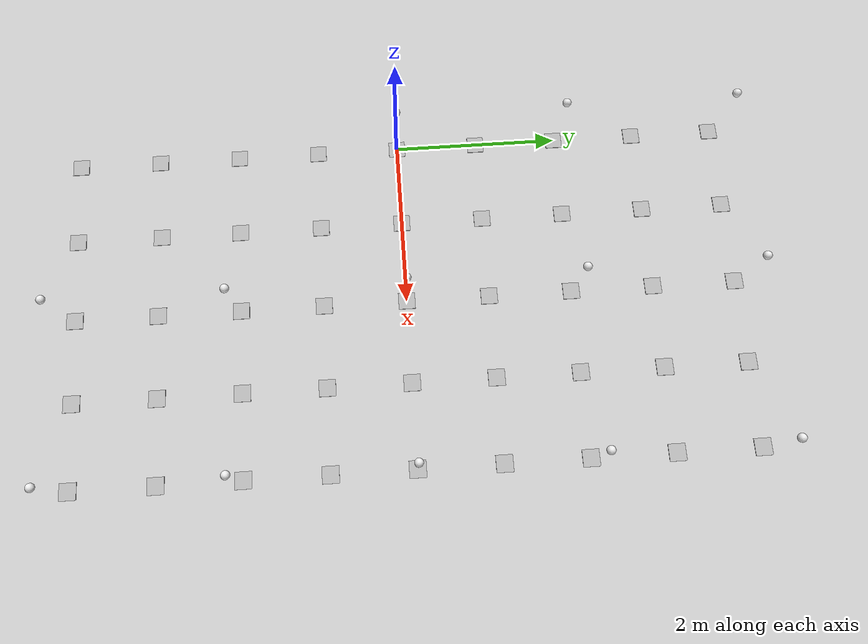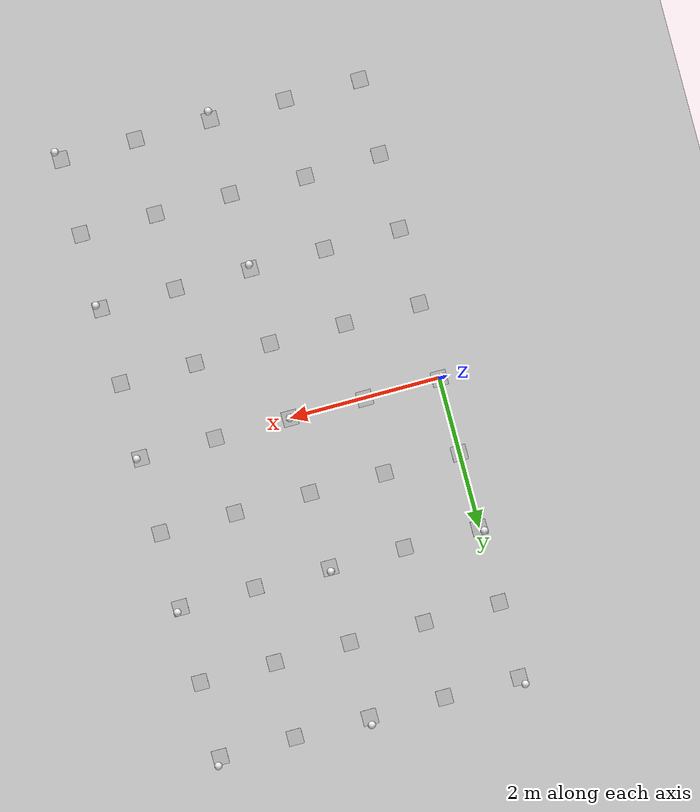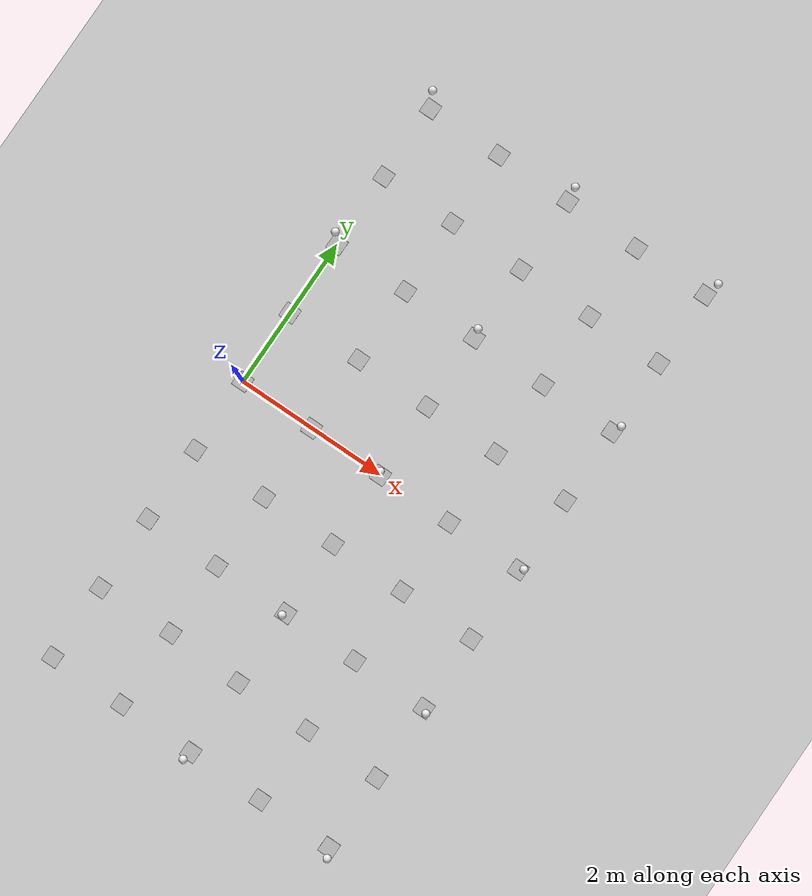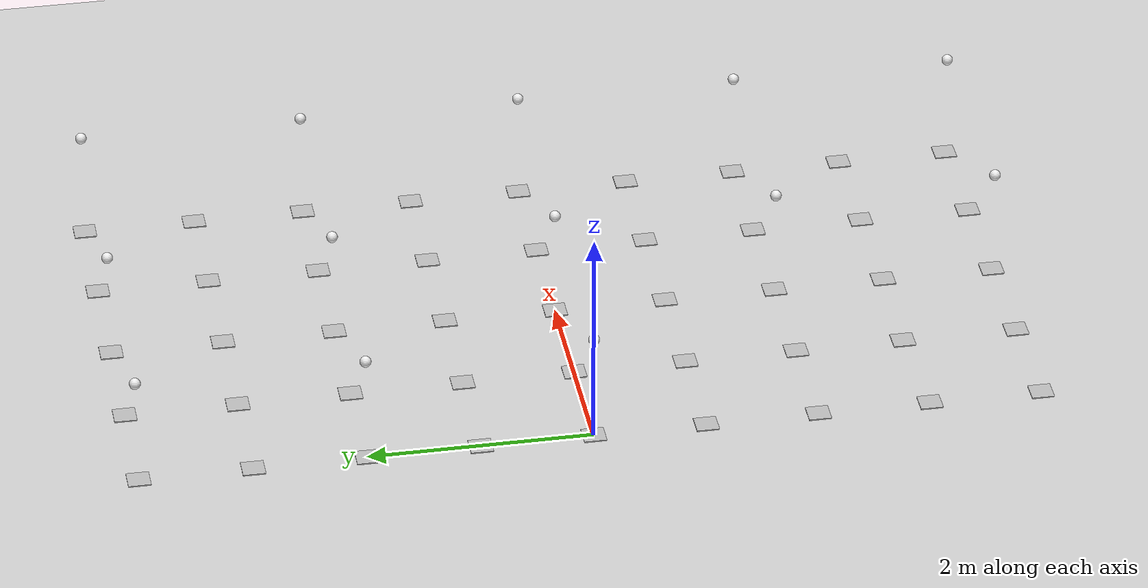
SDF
<sdf version="1.7">
 <world name="default">
  <model name="ground_plane">
   <static>1</static>
   <link name="link">
    <collision name="collision">
     <geometry><plane><normal>0 0 1</normal><size>100 100</size></plane></geometry>
     <surface>
      <contact><collide_bitmask>65535</collide_bitmask></contact>
      <friction><ode><mu>100</mu><mu2>50</mu2></ode></friction>
     </surface>
    </collision>
    <visual name="visual">
     <cast_shadows>0</cast_shadows>
     <geometry><plane><normal>0 0 1</normal><size>100 100</size></plane></geometry>
     <material>
      <script><uri>file://media/materials/scripts/gazebo.material</uri><name>Gazebo/Grey</name></script>
     </material>
    </visual>
   </link>
  </model>
  <model name="Ceiling_Light_12">
   <pose>0 0 1 0 0 0</pose>
   <link name="bulb">
    <visual name="main">
     <geometry><sphere><radius>0.05</radius></sphere></geometry>
     <material>
      <script><uri>file://media/materials/scripts/gazebo.material</uri><name>Gazebo/WhiteGlow</name></script>
      <shininess>0.3</shininess>
     </material>
    </visual>
    <light name="source" type="spot">
     <diffuse>1 1 0.6 1</diffuse>
     <specular>.1 .1 .1 1</specular>
     <spot>
      <inner_angle>1.5707963267948966</inner_angle>
      <outer_angle>2.356194490192345</outer_angle>
      <falloff>0.5</falloff>
     </spot>
     <attenuation>
      <range>3</range>
      <linear>0.6</linear>
      <constant>0.8</constant>
      <quadratic>0.2</quadratic>
     </attenuation>
     <cast_shadows>0</cast_shadows>
    </light>
   </link>
   <static>1</static>
  </model>
  <model name="Ceiling_Light_13">
   <pose>0 2 1 0 0 0</pose>
   <link name="bulb">
    <visual name="main">
     <geometry><sphere><radius>0.05</radius></sphere></geometry>
     <material>
      <script><uri>file://media/materials/scripts/gazebo.material</uri><name>Gazebo/WhiteGlow</name></script>
      <shininess>0.3</shininess>
     </material>
    </visual>
    <light name="source" type="spot">
     <diffuse>1 1 0.6 1</diffuse>
     <specular>.1 .1 .1 1</specular>
     <spot>
      <inner_angle>1.5707963267948966</inner_angle>
      <outer_angle>2.356194490192345</outer_angle>
      <falloff>0.5</falloff>
     </spot>
     <attenuation>
      <range>3</range>
      <linear>0.6</linear>
      <constant>0.8</constant>
      <quadratic>0.2</quadratic>
     </attenuation>
     <cast_shadows>0</cast_shadows>
    </light>
   </link>
   <static>1</static>
  </model>
  <model name="Ceiling_Light_14">
   <pose>0 4 1 0 0 0</pose>
   <link name="bulb">
    <visual name="main">
     <geometry><sphere><radius>0.05</radius></sphere></geometry>
     <material>
      <script><uri>file://media/materials/scripts/gazebo.material</uri><name>Gazebo/WhiteGlow</name></script>
      <shininess>0.3</shininess>
     </material>
    </visual>
    <light name="source" type="spot">
     <diffuse>1 1 0.6 1</diffuse>
     <specular>.1 .1 .1 1</specular>
     <spot>
      <inner_angle>1.5707963267948966</inner_angle>
      <outer_angle>2.356194490192345</outer_angle>
      <falloff>0.5</falloff>
     </spot>
     <attenuation>
      <range>3</range>
      <linear>0.6</linear>
      <constant>0.8</constant>
      <quadratic>0.2</quadratic>
     </attenuation>
     <cast_shadows>0</cast_shadows>
    </light>
   </link>
   <static>1</static>
  </model>
  <model name="Ceiling_Light_15">
   <pose>2 -4 1 0 0 0</pose>
   <link name="bulb">
    <visual name="main">
     <geometry><sphere><radius>0.05</radius></sphere></geometry>
     <material>
      <script><uri>file://media/materials/scripts/gazebo.material</uri><name>Gazebo/WhiteGlow</name></script>
      <shininess>0.3</shininess>
     </material>
    </visual>
    <light name="source" type="spot">
     <diffuse>1 1 0.6 1</diffuse>
     <specular>.1 .1 .1 1</specular>
     <spot>
      <inner_angle>1.5707963267948966</inner_angle>
      <outer_angle>2.356194490192345</outer_angle>
      <falloff>0.5</falloff>
     </spot>
     <attenuation>
      <range>3</range>
      <linear>0.6</linear>
      <constant>0.8</constant>
      <quadratic>0.2</quadratic>
     </attenuation>
     <cast_shadows>0</cast_shadows>
    </light>
   </link>
   <static>1</static>
  </model>
  <model name="Ceiling_Light_16">
   <pose>2 -2 1 0 0 0</pose>
   <link name="bulb">
    <visual name="main">
     <geometry><sphere><radius>0.05</radius></sphere></geometry>
     <material>
      <script><uri>file://media/materials/scripts/gazebo.material</uri><name>Gazebo/WhiteGlow</name></script>
      <shininess>0.3</shininess>
     </material>
    </visual>
    <light name="source" type="spot">
     <diffuse>1 1 0.6 1</diffuse>
     <specular>.1 .1 .1 1</specular>
     <spot>
      <inner_angle>1.5707963267948966</inner_angle>
      <outer_angle>2.356194490192345</outer_angle>
      <falloff>0.5</falloff>
     </spot>
     <attenuation>
      <range>3</range>
      <linear>0.6</linear>
      <constant>0.8</constant>
      <quadratic>0.2</quadratic>
     </attenuation>
     <cast_shadows>0</cast_shadows>
    </light>
   </link>
   <static>1</static>
  </model>
  <model name="Ceiling_Light_17">
   <pose>2 0 1 0 0 0</pose>
   <link name="bulb">
    <visual name="main">
     <geometry><sphere><radius>0.05</radius></sphere></geometry>
     <material>
      <script><uri>file://media/materials/scripts/gazebo.material</uri><name>Gazebo/WhiteGlow</name></script>
      <shininess>0.3</shininess>
     </material>
    </visual>
    <light name="source" type="spot">
     <diffuse>1 1 0.6 1</diffuse>
     <specular>.1 .1 .1 1</specular>
     <spot>
      <inner_angle>1.5707963267948966</inner_angle>
      <outer_angle>2.356194490192345</outer_angle>
      <falloff>0.5</falloff>
     </spot>
     <attenuation>
      <range>3</range>
      <linear>0.6</linear>
      <constant>0.8</constant>
      <quadratic>0.2</quadratic>
     </attenuation>
     <cast_shadows>0</cast_shadows>
    </light>
   </link>
   <static>1</static>
  </model>
  <model name="Ceiling_Light_18">
   <pose>2 2 1 0 0 0</pose>
   <link name="bulb">
    <visual name="main">
     <geometry><sphere><radius>0.05</radius></sphere></geometry>
     <material>
      <script><uri>file://media/materials/scripts/gazebo.material</uri><name>Gazebo/WhiteGlow</name></script>
      <shininess>0.3</shininess>
     </material>
    </visual>
    <light name="source" type="spot">
     <diffuse>1 1 0.6 1</diffuse>
     <specular>.1 .1 .1 1</specular>
     <spot>
      <inner_angle>1.5707963267948966</inner_angle>
      <outer_angle>2.356194490192345</outer_angle>
      <falloff>0.5</falloff>
     </spot>
     <attenuation>
      <range>3</range>
      <linear>0.6</linear>
      <constant>0.8</constant>
      <quadratic>0.2</quadratic>
     </attenuation>
     <cast_shadows>0</cast_shadows>
    </light>
   </link>
   <static>1</static>
  </model>
  <model name="Ceiling_Light_19">
   <pose>2 4 1 0 0 0</pose>
   <link name="bulb">
    <visual name="main">
     <geometry><sphere><radius>0.05</radius></sphere></geometry>
     <material>
      <script><uri>file://media/materials/scripts/gazebo.material</uri><name>Gazebo/WhiteGlow</name></script>
      <shininess>0.3</shininess>
     </material>
    </visual>
    <light name="source" type="spot">
     <diffuse>1 1 0.6 1</diffuse>
     <specular>.1 .1 .1 1</specular>
     <spot>
      <inner_angle>1.5707963267948966</inner_angle>
      <outer_angle>2.356194490192345</outer_angle>
      <falloff>0.5</falloff>
     </spot>
     <attenuation>
      <range>3</range>
      <linear>0.6</linear>
      <constant>0.8</constant>
      <quadratic>0.2</quadratic>
     </attenuation>
     <cast_shadows>0</cast_shadows>
    </light>
   </link>
   <static>1</static>
  </model>
  <model name="Ceiling_Light_20">
   <pose>4 -4 1 0 0 0</pose>
   <link name="bulb">
    <visual name="main">
     <geometry><sphere><radius>0.05</radius></sphere></geometry>
     <material>
      <script><uri>file://media/materials/scripts/gazebo.material</uri><name>Gazebo/WhiteGlow</name></script>
      <shininess>0.3</shininess>
     </material>
    </visual>
    <light name="source" type="spot">
     <diffuse>1 1 0.6 1</diffuse>
     <specular>.1 .1 .1 1</specular>
     <spot>
      <inner_angle>1.5707963267948966</inner_angle>
      <outer_angle>2.356194490192345</outer_angle>
      <falloff>0.5</falloff>
     </spot>
     <attenuation>
      <range>3</range>
      <linear>0.6</linear>
      <constant>0.8</constant>
      <quadratic>0.2</quadratic>
     </attenuation>
     <cast_shadows>0</cast_shadows>
    </light>
   </link>
   <static>1</static>
  </model>
  <model name="Ceiling_Light_21">
   <pose>4 -2 1 0 0 0</pose>
   <link name="bulb">
    <visual name="main">
     <geometry><sphere><radius>0.05</radius></sphere></geometry>
     <material>
      <script><uri>file://media/materials/scripts/gazebo.material</uri><name>Gazebo/WhiteGlow</name></script>
      <shininess>0.3</shininess>
     </material>
    </visual>
    <light name="source" type="spot">
     <diffuse>1 1 0.6 1</diffuse>
     <specular>.1 .1 .1 1</specular>
     <spot>
      <inner_angle>1.5707963267948966</inner_angle>
      <outer_angle>2.356194490192345</outer_angle>
      <falloff>0.5</falloff>
     </spot>
     <attenuation>
      <range>3</range>
      <linear>0.6</linear>
      <constant>0.8</constant>
      <quadratic>0.2</quadratic>
     </attenuation>
     <cast_shadows>0</cast_shadows>
    </light>
   </link>
   <static>1</static>
  </model>
  <model name="Ceiling_Light_22">
   <pose>4 0 1 0 0 0</pose>
   <link name="bulb">
    <visual name="main">
     <geometry><sphere><radius>0.05</radius></sphere></geometry>
     <material>
      <script><uri>file://media/materials/scripts/gazebo.material</uri><name>Gazebo/WhiteGlow</name></script>
      <shininess>0.3</shininess>
     </material>
    </visual>
    <light name="source" type="spot">
     <diffuse>1 1 0.6 1</diffuse>
     <specular>.1 .1 .1 1</specular>
     <spot>
      <inner_angle>1.5707963267948966</inner_angle>
      <outer_angle>2.356194490192345</outer_angle>
      <falloff>0.5</falloff>
     </spot>
     <attenuation>
      <range>3</range>
      <linear>0.6</linear>
      <constant>0.8</constant>
      <quadratic>0.2</quadratic>
     </attenuation>
     <cast_shadows>0</cast_shadows>
    </light>
   </link>
   <static>1</static>
  </model>
  <model name="Ceiling_Light_23">
   <pose>4 2 1 0 0 0</pose>
   <link name="bulb">
    <visual name="main">
     <geometry><sphere><radius>0.05</radius></sphere></geometry>
     <material>
      <script><uri>file://media/materials/scripts/gazebo.material</uri><name>Gazebo/WhiteGlow</name></script>
      <shininess>0.3</shininess>
     </material>
    </visual>
    <light name="source" type="spot">
     <diffuse>1 1 0.6 1</diffuse>
     <specular>.1 .1 .1 1</specular>
     <spot>
      <inner_angle>1.5707963267948966</inner_angle>
      <outer_angle>2.356194490192345</outer_angle>
      <falloff>0.5</falloff>
     </spot>
     <attenuation>
      <range>3</range>
      <linear>0.6</linear>
      <constant>0.8</constant>
      <quadratic>0.2</quadratic>
     </attenuation>
     <cast_shadows>0</cast_shadows>
    </light>
   </link>
   <static>1</static>
  </model>
  <model name="Ceiling_Light_24">
   <pose>4 4 1 0 0 0</pose>
   <link name="bulb">
    <visual name="main">
     <geometry><sphere><radius>0.05</radius></sphere></geometry>
     <material>
      <script><uri>file://media/materials/scripts/gazebo.material</uri><name>Gazebo/WhiteGlow</name></script>
      <shininess>0.3</shininess>
     </material>
    </visual>
    <light name="source" type="spot">
     <diffuse>1 1 0.6 1</diffuse>
     <specular>.1 .1 .1 1</specular>
     <spot>
      <inner_angle>1.5707963267948966</inner_angle>
      <outer_angle>2.356194490192345</outer_angle>
      <falloff>0.5</falloff>
     </spot>
     <attenuation>
      <range>3</range>
      <linear>0.6</linear>
      <constant>0.8</constant>
      <quadratic>0.2</quadratic>
     </attenuation>
     <cast_shadows>0</cast_shadows>
    </light>
   </link>
   <static>1</static>
  </model>
  <model name="Apriltag36_11_00001">
   <link name="main">
    <visual name="main_Visual">
     <geometry><box><size>0.2 0.2 0.01</size></box></geometry>
     <material>
      <script>
       <uri>model://Apriltag36_11_00001/materials/scripts</uri>
       <uri>model://Apriltag36_11_00001/materials/textures</uri>
       <name>Apriltag36_11_00001</name>
      </script>
     </material>
    </visual>
   </link>
   <static>1</static>
   <pose>1 0 0 0 -0 0</pose>
  </model>
  <model name="Apriltag36_11_00002">
   <link name="main">
    <visual name="main_Visual">
     <geometry><box><size>0.2 0.2 0.01</size></box></geometry>
     <material>
      <script>
       <uri>model://Apriltag36_11_00002/materials/scripts</uri>
       <uri>model://Apriltag36_11_00002/materials/textures</uri>
       <name>Apriltag36_11_00002</name>
      </script>
     </material>
    </visual>
   </link>
   <static>1</static>
   <pose>0 -1 0 0 -0 0</pose>
  </model>
  <model name="Apriltag36_11_00003">
   <link name="main">
    <visual name="main_Visual">
     <geometry><box><size>0.2 0.2 0.01</size></box></geometry>
     <material>
      <script>
       <uri>model://Apriltag36_11_00003/materials/scripts</uri>
       <uri>model://Apriltag36_11_00003/materials/textures</uri>
       <name>Apriltag36_11_00003</name>
      </script>
     </material>
    </visual>
   </link>
   <static>1</static>
   <pose>1 -1 0 0 -0 0</pose>
  </model>
  <model name="Apriltag36_11_00000_clone_1">
   <link name="main">
    <visual name="main_Visual">
     <geometry><box><size>0.2 0.2 0.01</size></box></geometry>
     <material>
      <script>
       <uri>model://Apriltag36_11_00000/materials/scripts</uri>
       <uri>model://Apriltag36_11_00000/materials/textures</uri>
       <name>Apriltag36_11_00000</name>
      </script>
     </material>
    </visual>
   </link>
   <static>1</static>
   <pose>0 4 0 0 -0 0</pose>
  </model>
  <model name="Apriltag36_11_00000_clone_2">
   <link name="main">
    <visual name="main_Visual">
     <geometry><box><size>0.2 0.2 0.01</size></box></geometry>
     <material>
      <script>
       <uri>model://Apriltag36_11_00000/materials/scripts</uri>
       <uri>model://Apriltag36_11_00000/materials/textures</uri>
       <name>Apriltag36_11_00000</name>
      </script>
     </material>
    </visual>
   </link>
   <static>1</static>
   <pose>2 4 0 0 -0 0</pose>
  </model>
  <model name="Apriltag36_11_00000_clone_3">
   <link name="main">
    <visual name="main_Visual">
     <geometry><box><size>0.2 0.2 0.01</size></box></geometry>
     <material>
      <script>
       <uri>model://Apriltag36_11_00000/materials/scripts</uri>
       <uri>model://Apriltag36_11_00000/materials/textures</uri>
       <name>Apriltag36_11_00000</name>
      </script>
     </material>
    </visual>
   </link>
   <static>1</static>
   <pose>4 4 0 0 -0 0</pose>
  </model>
  <model name="Apriltag36_11_00000_clone_6">
   <link name="main">
    <visual name="main_Visual">
     <geometry><box><size>0.2 0.2 0.01</size></box></geometry>
     <material>
      <script>
       <uri>model://Apriltag36_11_00000/materials/scripts</uri>
       <uri>model://Apriltag36_11_00000/materials/textures</uri>
       <name>Apriltag36_11_00000</name>
      </script>
     </material>
    </visual>
   </link>
   <static>1</static>
   <pose>0 2 0 0 -0 0</pose>
  </model>
  <model name="Apriltag36_11_00000_clone_7">
   <link name="main">
    <visual name="main_Visual">
     <geometry><box><size>0.2 0.2 0.01</size></box></geometry>
     <material>
      <script>
       <uri>model://Apriltag36_11_00000/materials/scripts</uri>
       <uri>model://Apriltag36_11_00000/materials/textures</uri>
       <name>Apriltag36_11_00000</name>
      </script>
     </material>
    </visual>
   </link>
   <static>1</static>
   <pose>2 2 0 0 -0 0</pose>
  </model>
  <model name="Apriltag36_11_00000_clone_8">
   <link name="main">
    <visual name="main_Visual">
     <geometry><box><size>0.2 0.2 0.01</size></box></geometry>
     <material>
      <script>
       <uri>model://Apriltag36_11_00000/materials/scripts</uri>
       <uri>model://Apriltag36_11_00000/materials/textures</uri>
       <name>Apriltag36_11_00000</name>
      </script>
     </material>
    </visual>
   </link>
   <static>1</static>
   <pose>4 2 0 0 -0 0</pose>
  </model>
  <model name="Apriltag36_11_00000_clone_4_clone_1">
   <link name="main">
    <visual name="main_Visual">
     <geometry><box><size>0.2 0.2 0.01</size></box></geometry>
     <material>
      <script>
       <uri>model://Apriltag36_11_00000/materials/scripts</uri>
       <uri>model://Apriltag36_11_00000/materials/textures</uri>
       <name>Apriltag36_11_00000</name>
      </script>
     </material>
    </visual>
   </link>
   <static>1</static>
  </model>
  <model name="Apriltag36_11_00000_clone_4_clone_2">
   <link name="main">
    <visual name="main_Visual">
     <geometry><box><size>0.2 0.2 0.01</size></box></geometry>
     <material>
      <script>
       <uri>model://Apriltag36_11_00000/materials/scripts</uri>
       <uri>model://Apriltag36_11_00000/materials/textures</uri>
       <name>Apriltag36_11_00000</name>
      </script>
     </material>
    </visual>
   </link>
   <static>1</static>
   <pose>2 0 0 0 -0 0</pose>
  </model>
  <model name="Apriltag36_11_00000_clone_4_clone_3">
   <link name="main">
    <visual name="main_Visual">
     <geometry><box><size>0.2 0.2 0.01</size></box></geometry>
     <material>
      <script>
       <uri>model://Apriltag36_11_00000/materials/scripts</uri>
       <uri>model://Apriltag36_11_00000/materials/textures</uri>
       <name>Apriltag36_11_00000</name>
      </script>
     </material>
    </visual>
   </link>
   <static>1</static>
   <pose>4 0 0 0 -0 0</pose>
  </model>
  <model name="Apriltag36_11_00000_clone_4_clone_6">
   <link name="main">
    <visual name="main_Visual">
     <geometry><box><size>0.2 0.2 0.01</size></box></geometry>
     <material>
      <script>
       <uri>model://Apriltag36_11_00000/materials/scripts</uri>
       <uri>model://Apriltag36_11_00000/materials/textures</uri>
       <name>Apriltag36_11_00000</name>
      </script>
     </material>
    </visual>
   </link>
   <static>1</static>
   <pose>0 -2 0 0 -0 0</pose>
  </model>
  <model name="Apriltag36_11_00000_clone_4_clone_7">
   <link name="main">
    <visual name="main_Visual">
     <geometry><box><size>0.2 0.2 0.01</size></box></geometry>
     <material>
      <script>
       <uri>model://Apriltag36_11_00000/materials/scripts</uri>
       <uri>model://Apriltag36_11_00000/materials/textures</uri>
       <name>Apriltag36_11_00000</name>
      </script>
     </material>
    </visual>
   </link>
   <static>1</static>
   <pose>2 -2 0 0 -0 0</pose>
  </model>
  <model name="Apriltag36_11_00000_clone_4_clone_8">
   <link name="main">
    <visual name="main_Visual">
     <geometry><box><size>0.2 0.2 0.01</size></box></geometry>
     <material>
      <script>
       <uri>model://Apriltag36_11_00000/materials/scripts</uri>
       <uri>model://Apriltag36_11_00000/materials/textures</uri>
       <name>Apriltag36_11_00000</name>
      </script>
     </material>
    </visual>
   </link>
   <static>1</static>
   <pose>4 -2 0 0 -0 0</pose>
  </model>
  <model name="Apriltag36_11_00000_clone_4_clone_11">
   <link name="main">
    <visual name="main_Visual">
     <geometry><box><size>0.2 0.2 0.01</size></box></geometry>
     <material>
      <script>
       <uri>model://Apriltag36_11_00000/materials/scripts</uri>
       <uri>model://Apriltag36_11_00000/materials/textures</uri>
       <name>Apriltag36_11_00000</name>
      </script>
     </material>
    </visual>
   </link>
   <static>1</static>
   <pose>0 -4 0 0 -0 0</pose>
  </model>
  <model name="Apriltag36_11_00000_clone_4_clone_12">
   <link name="main">
    <visual name="main_Visual">
     <geometry><box><size>0.2 0.2 0.01</size></box></geometry>
     <material>
      <script>
       <uri>model://Apriltag36_11_00000/materials/scripts</uri>
       <uri>model://Apriltag36_11_00000/materials/textures</uri>
       <name>Apriltag36_11_00000</name>
      </script>
     </material>
    </visual>
   </link>
   <static>1</static>
   <pose>2 -4 0 0 -0 0</pose>
  </model>
  <model name="Apriltag36_11_00000_clone_4_clone_13">
   <link name="main">
    <visual name="main_Visual">
     <geometry><box><size>0.2 0.2 0.01</size></box></geometry>
     <material>
      <script>
       <uri>model://Apriltag36_11_00000/materials/scripts</uri>
       <uri>model://Apriltag36_11_00000/materials/textures</uri>
       <name>Apriltag36_11_00000</name>
      </script>
     </material>
    </visual>
   </link>
   <static>1</static>
   <pose>4 -4 0 0 -0 0</pose>
  </model>
  <model name="Apriltag36_11_00002_clone_7">
   <link name="main">
    <visual name="main_Visual">
     <geometry><box><size>0.2 0.2 0.01</size></box></geometry>
     <material>
      <script>
       <uri>model://Apriltag36_11_00002/materials/scripts</uri>
       <uri>model://Apriltag36_11_00002/materials/textures</uri>
       <name>Apriltag36_11_00002</name>
      </script>
     </material>
    </visual>
   </link>
   <static>1</static>
   <pose>0 3 0 0 -0 0</pose>
  </model>
  <model name="Apriltag36_11_00002_clone_8">
   <link name="main">
    <visual name="main_Visual">
     <geometry><box><size>0.2 0.2 0.01</size></box></geometry>
     <material>
      <script>
       <uri>model://Apriltag36_11_00002/materials/scripts</uri>
       <uri>model://Apriltag36_11_00002/materials/textures</uri>
       <name>Apriltag36_11_00002</name>
      </script>
     </material>
    </visual>
   </link>
   <static>1</static>
   <pose>0 1 0 0 -0 0</pose>
  </model>
  <model name="Apriltag36_11_00002_clone_9">
   <link name="main">
    <visual name="main_Visual">
     <geometry><box><size>0.2 0.2 0.01</size></box></geometry>
     <material>
      <script>
       <uri>model://Apriltag36_11_00002/materials/scripts</uri>
       <uri>model://Apriltag36_11_00002/materials/textures</uri>
       <name>Apriltag36_11_00002</name>
      </script>
     </material>
    </visual>
   </link>
   <static>1</static>
   <pose>0 -3 0 0 -0 0</pose>
  </model>
  <model name="Apriltag36_11_00002_clone_10">
   <link name="main">
    <visual name="main_Visual">
     <geometry><box><size>0.2 0.2 0.01</size></box></geometry>
     <material>
      <script>
       <uri>model://Apriltag36_11_00002/materials/scripts</uri>
       <uri>model://Apriltag36_11_00002/materials/textures</uri>
       <name>Apriltag36_11_00002</name>
      </script>
     </material>
    </visual>
   </link>
   <static>1</static>
   <pose>2 -3 0 0 -0 0</pose>
  </model>
  <model name="Apriltag36_11_00002_clone_11">
   <link name="main">
    <visual name="main_Visual">
     <geometry><box><size>0.2 0.2 0.01</size></box></geometry>
     <material>
      <script>
       <uri>model://Apriltag36_11_00002/materials/scripts</uri>
       <uri>model://Apriltag36_11_00002/materials/textures</uri>
       <name>Apriltag36_11_00002</name>
      </script>
     </material>
    </visual>
   </link>
   <static>1</static>
   <pose>2 -1 0 0 -0 0</pose>
  </model>
  <model name="Apriltag36_11_00002_clone_12">
   <link name="main">
    <visual name="main_Visual">
     <geometry><box><size>0.2 0.2 0.01</size></box></geometry>
     <material>
      <script>
       <uri>model://Apriltag36_11_00002/materials/scripts</uri>
       <uri>model://Apriltag36_11_00002/materials/textures</uri>
       <name>Apriltag36_11_00002</name>
      </script>
     </material>
    </visual>
   </link>
   <static>1</static>
   <pose>2 1 0 0 -0 0</pose>
  </model>
  <model name="Apriltag36_11_00002_clone_13">
   <link name="main">
    <visual name="main_Visual">
     <geometry><box><size>0.2 0.2 0.01</size></box></geometry>
     <material>
      <script>
       <uri>model://Apriltag36_11_00002/materials/scripts</uri>
       <uri>model://Apriltag36_11_00002/materials/textures</uri>
       <name>Apriltag36_11_00002</name>
      </script>
     </material>
    </visual>
   </link>
   <static>1</static>
   <pose>2 3 0 0 -0 0</pose>
  </model>
  <model name="Apriltag36_11_00002_clone_14">
   <link name="main">
    <visual name="main_Visual">
     <geometry><box><size>0.2 0.2 0.01</size></box></geometry>
     <material>
      <script>
       <uri>model://Apriltag36_11_00002/materials/scripts</uri>
       <uri>model://Apriltag36_11_00002/materials/textures</uri>
       <name>Apriltag36_11_00002</name>
      </script>
     </material>
    </visual>
   </link>
   <static>1</static>
   <pose>4 3 0 0 -0 0</pose>
  </model>
  <model name="Apriltag36_11_00002_clone_15">
   <link name="main">
    <visual name="main_Visual">
     <geometry><box><size>0.2 0.2 0.01</size></box></geometry>
     <material>
      <script>
       <uri>model://Apriltag36_11_00002/materials/scripts</uri>
       <uri>model://Apriltag36_11_00002/materials/textures</uri>
       <name>Apriltag36_11_00002</name>
      </script>
     </material>
    </visual>
   </link>
   <static>1</static>
   <pose>4 1 0 0 -0 0</pose>
  </model>
  <model name="Apriltag36_11_00002_clone_16">
   <link name="main">
    <visual name="main_Visual">
     <geometry><box><size>0.2 0.2 0.01</size></box></geometry>
     <material>
      <script>
       <uri>model://Apriltag36_11_00002/materials/scripts</uri>
       <uri>model://Apriltag36_11_00002/materials/textures</uri>
       <name>Apriltag36_11_00002</name>
      </script>
     </material>
    </visual>
   </link>
   <static>1</static>
   <pose>4 -1 0 0 -0 0</pose>
  </model>
  <model name="Apriltag36_11_00002_clone_17">
   <link name="main">
    <visual name="main_Visual">
     <geometry><box><size>0.2 0.2 0.01</size></box></geometry>
     <material>
      <script>
       <uri>model://Apriltag36_11_00002/materials/scripts</uri>
       <uri>model://Apriltag36_11_00002/materials/textures</uri>
       <name>Apriltag36_11_00002</name>
      </script>
     </material>
    </visual>
   </link>
   <static>1</static>
   <pose>4 -3 0 0 -0 0</pose>
  </model>
  <model name="Apriltag36_11_00001_clone_9">
   <link name="main">
    <visual name="main_Visual">
     <geometry><box><size>0.2 0.2 0.01</size></box></geometry>
     <material>
      <script>
       <uri>model://Apriltag36_11_00001/materials/scripts</uri>
       <uri>model://Apriltag36_11_00001/materials/textures</uri>
       <name>Apriltag36_11_00001</name>
      </script>
     </material>
    </visual>
   </link>
   <static>1</static>
   <pose>1 4 0 0 -0 0</pose>
  </model>
  <model name="Apriltag36_11_00001_clone_10">
   <link name="main">
    <visual name="main_Visual">
     <geometry><box><size>0.2 0.2 0.01</size></box></geometry>
     <material>
      <script>
       <uri>model://Apriltag36_11_00001/materials/scripts</uri>
       <uri>model://Apriltag36_11_00001/materials/textures</uri>
       <name>Apriltag36_11_00001</name>
      </script>
     </material>
    </visual>
   </link>
   <static>1</static>
   <pose>1 2 0 0 -0 0</pose>
  </model>
  <model name="Apriltag36_11_00001_clone_11">
   <link name="main">
    <visual name="main_Visual">
     <geometry><box><size>0.2 0.2 0.01</size></box></geometry>
     <material>
      <script>
       <uri>model://Apriltag36_11_00001/materials/scripts</uri>
       <uri>model://Apriltag36_11_00001/materials/textures</uri>
       <name>Apriltag36_11_00001</name>
      </script>
     </material>
    </visual>
   </link>
   <static>1</static>
   <pose>1 -2 0 0 -0 0</pose>
  </model>
  <model name="Apriltag36_11_00001_clone_12">
   <link name="main">
    <visual name="main_Visual">
     <geometry><box><size>0.2 0.2 0.01</size></box></geometry>
     <material>
      <script>
       <uri>model://Apriltag36_11_00001/materials/scripts</uri>
       <uri>model://Apriltag36_11_00001/materials/textures</uri>
       <name>Apriltag36_11_00001</name>
      </script>
     </material>
    </visual>
   </link>
   <static>1</static>
   <pose>1 -4 0 0 -0 0</pose>
  </model>
  <model name="Apriltag36_11_00001_clone_13">
   <link name="main">
    <visual name="main_Visual">
     <geometry><box><size>0.2 0.2 0.01</size></box></geometry>
     <material>
      <script>
       <uri>model://Apriltag36_11_00001/materials/scripts</uri>
       <uri>model://Apriltag36_11_00001/materials/textures</uri>
       <name>Apriltag36_11_00001</name>
      </script>
     </material>
    </visual>
   </link>
   <static>1</static>
   <pose>3 4 0 0 -0 0</pose>
  </model>
  <model name="Apriltag36_11_00001_clone_14">
   <link name="main">
    <visual name="main_Visual">
     <geometry><box><size>0.2 0.2 0.01</size></box></geometry>
     <material>
      <script>
       <uri>model://Apriltag36_11_00001/materials/scripts</uri>
       <uri>model://Apriltag36_11_00001/materials/textures</uri>
       <name>Apriltag36_11_00001</name>
      </script>
     </material>
    </visual>
   </link>
   <static>1</static>
   <pose>3 2 0 0 -0 0</pose>
  </model>
  <model name="Apriltag36_11_00001_clone_15">
   <link name="main">
    <visual name="main_Visual">
     <geometry><box><size>0.2 0.2 0.01</size></box></geometry>
     <material>
      <script>
       <uri>model://Apriltag36_11_00001/materials/scripts</uri>
       <uri>model://Apriltag36_11_00001/materials/textures</uri>
       <name>Apriltag36_11_00001</name>
      </script>
     </material>
    </visual>
   </link>
   <static>1</static>
   <pose>3 0 0 0 -0 0</pose>
  </model>
  <model name="Apriltag36_11_00001_clone_16">
   <link name="main">
    <visual name="main_Visual">
     <geometry><box><size>0.2 0.2 0.01</size></box></geometry>
     <material>
      <script>
       <uri>model://Apriltag36_11_00001/materials/scripts</uri>
       <uri>model://Apriltag36_11_00001/materials/textures</uri>
       <name>Apriltag36_11_00001</name>
      </script>
     </material>
    </visual>
   </link>
   <static>1</static>
   <pose>3 -2 0 0 -0 0</pose>
  </model>
  <model name="Apriltag36_11_00001_clone_17">
   <link name="main">
    <visual name="main_Visual">
     <geometry><box><size>0.2 0.2 0.01</size></box></geometry>
     <material>
      <script>
       <uri>model://Apriltag36_11_00001/materials/scripts</uri>
       <uri>model://Apriltag36_11_00001/materials/textures</uri>
       <name>Apriltag36_11_00001</name>
      </script>
     </material>
    </visual>
   </link>
   <static>1</static>
   <pose>3 -4 0 0 -0 0</pose>
  </model>
  <model name="Apriltag36_11_00003_clone_7">
   <link name="main">
    <visual name="main_Visual">
     <geometry><box><size>0.2 0.2 0.01</size></box></geometry>
     <material>
      <script>
       <uri>model://Apriltag36_11_00003/materials/scripts</uri>
       <uri>model://Apriltag36_11_00003/materials/textures</uri>
       <name>Apriltag36_11_00003</name>
      </script>
     </material>
    </visual>
   </link>
   <static>1</static>
   <pose>1 -2.97005 0 0 -0 0</pose>
  </model>
  <model name="Apriltag36_11_00003_clone_8">
   <link name="main">
    <visual name="main_Visual">
     <geometry><box><size>0.2 0.2 0.01</size></box></geometry>
     <material>
      <script>
       <uri>model://Apriltag36_11_00003/materials/scripts</uri>
       <uri>model://Apriltag36_11_00003/materials/textures</uri>
       <name>Apriltag36_11_00003</name>
      </script>
     </material>
    </visual>
   </link>
   <static>1</static>
   <pose>1 1 0 0 -0 0</pose>
  </model>
  <model name="Apriltag36_11_00003_clone_9">
   <link name="main">
    <visual name="main_Visual">
     <geometry><box><size>0.2 0.2 0.01</size></box></geometry>
     <material>
      <script>
       <uri>model://Apriltag36_11_00003/materials/scripts</uri>
       <uri>model://Apriltag36_11_00003/materials/textures</uri>
       <name>Apriltag36_11_00003</name>
      </script>
     </material>
    </visual>
   </link>
   <static>1</static>
   <pose>1 3 0 0 -0 0</pose>
  </model>
  <model name="Apriltag36_11_00003_clone_10">
   <link name="main">
    <visual name="main_Visual">
     <geometry><box><size>0.2 0.2 0.01</size></box></geometry>
     <material>
      <script>
       <uri>model://Apriltag36_11_00003/materials/scripts</uri>
       <uri>model://Apriltag36_11_00003/materials/textures</uri>
       <name>Apriltag36_11_00003</name>
      </script>
     </material>
    </visual>
   </link>
   <static>1</static>
   <pose>3 3 0 0 -0 0</pose>
  </model>
  <model name="Apriltag36_11_00003_clone_11">
   <link name="main">
    <visual name="main_Visual">
     <geometry><box><size>0.2 0.2 0.01</size></box></geometry>
     <material>
      <script>
       <uri>model://Apriltag36_11_00003/materials/scripts</uri>
       <uri>model://Apriltag36_11_00003/materials/textures</uri>
       <name>Apriltag36_11_00003</name>
      </script>
     </material>
    </visual>
   </link>
   <static>1</static>
   <pose>3 1 0 0 -0 0</pose>
  </model>
  <model name="Apriltag36_11_00003_clone_12">
   <link name="main">
    <visual name="main_Visual">
     <geometry><box><size>0.2 0.2 0.01</size></box></geometry>
     <material>
      <script>
       <uri>model://Apriltag36_11_00003/materials/scripts</uri>
       <uri>model://Apriltag36_11_00003/materials/textures</uri>
       <name>Apriltag36_11_00003</name>
      </script>
     </material>
    </visual>
   </link>
   <static>1</static>
   <pose>3 -1 0 0 -0 0</pose>
  </model>
  <model name="Apriltag36_11_00003_clone_13">
   <link name="main">
    <visual name="main_Visual">
     <geometry><box><size>0.2 0.2 0.01</size></box></geometry>
     <material>
      <script>
       <uri>model://Apriltag36_11_00003/materials/scripts</uri>
       <uri>model://Apriltag36_11_00003/materials/textures</uri>
       <name>Apriltag36_11_00003</name>
      </script>
     </material>
    </visual>
   </link>
   <static>1</static>
   <pose>3 -3 0 0 -0 0</pose>
  </model>
 </world>
</sdf>
